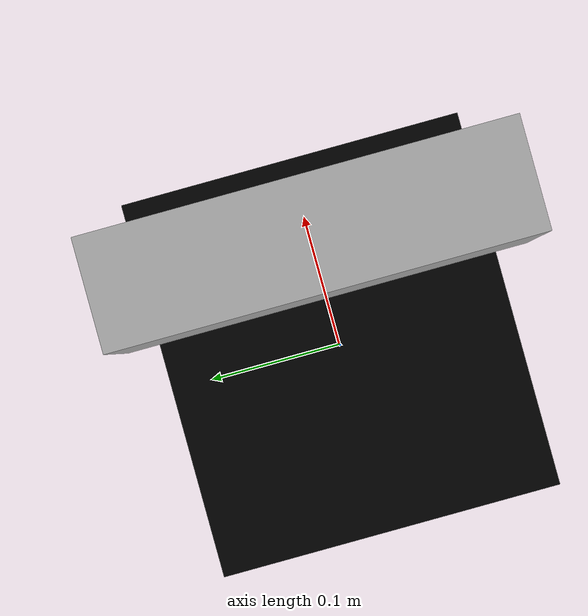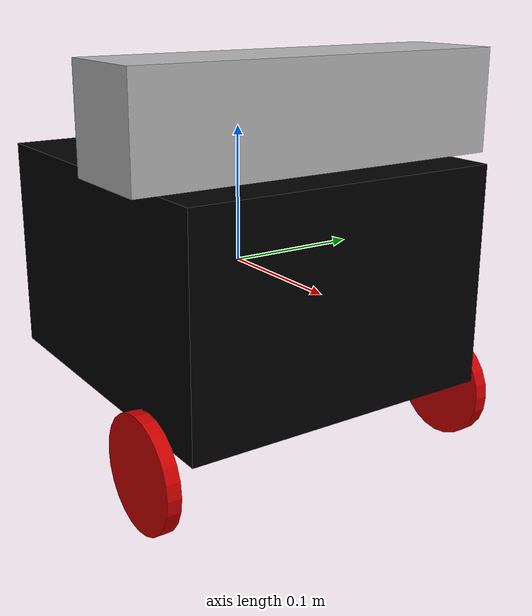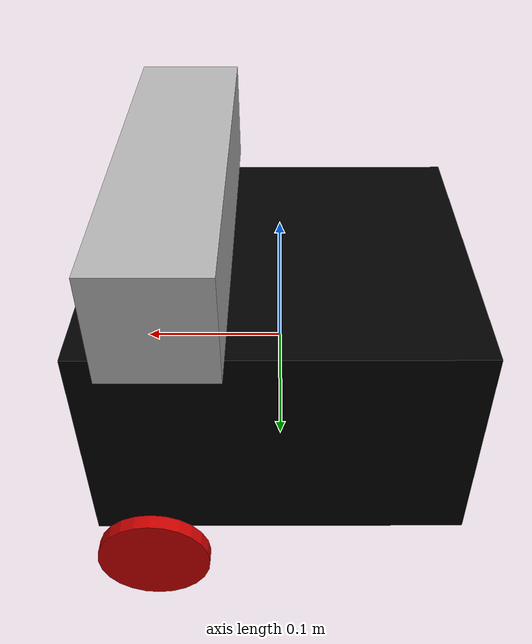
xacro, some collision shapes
<?xml version="1.0"?>
<robot xmlns:xacro="http://www.ros.org/wiki/xacro" name="vacumm_bot1">

  <xacro:property name="base_width" value="0.235"/>
  <xacro:property name="base_height" value="0.16"/>
  <xacro:property name="base_len" value="0.26"/>
  <xacro:property name="wheel_radius" value="0.04"/>
  <xacro:property name="base_wheel_gap" value="0.0125"/>

  <xacro:property name="wheel_joint_offset" value="0.09"/>
  <xacro:property name="wheel_joint_drop_offset" value="-0.02"/>

  <xacro:property name="caster_wheel_radius" value="${wheel_radius/2}"/>
  <xacro:property name="caster_wheel_mass" value="0.0001"/>
  <xacro:property name="caster_wheel_joint_offset" value="0.07"/>
  <xacro:property name="caster_wheel_down_offset" value="0.0001"/>

  <xacro:property name="M_PI" value="3.1415926535897931" />
  <xacro:property name="cam_px" value="0.1" />
  <xacro:property name="cam_pz" value="${base_height-0.025}" />
  <xacro:property name="kinect_cam_py" value="0"/>
  <xacro:property name="cam_or" value="0" />
  <xacro:property name="cam_op" value="0" />
  <xacro:property name="cam_oy" value="0" />

  <!--Color Properties-->
  <material name="blue">
    <color rgba="0 0 0.8 1"/>
  </material>
  <material name="black">
    <color rgba="0 0 0 1"/>
  </material>
  <material name="white">
    <color rgba="1 1 1 1"/>
  </material>
  <material name="red">
    <color rgba="0.8 0.0 0.0 1.0"/>
  </material>

  <!--Interial macros-->
  <xacro:macro name="cylinder_inertia" params="m r h">
    <inertial>
      <mass value="${m}"/>
      <inertia ixx="${m*(3*r*r+h*h)/12}" ixy = "0" ixz = "0" iyy="${m*(3*r*r+h*h)/12}" iyz = "0" izz="${m*r*r/2}"/>
    </inertial>
  </xacro:macro>

  <xacro:macro name="box_inertia" params="m w h d">
    <inertial>
      <mass value="${m}"/>
      <inertia ixx="${m / 12.0 * (d*d + h*h)}" ixy="0.0" ixz="0.0" iyy="${m / 12.0 * (w*w + h*h)}" iyz="0.0" izz="${m / 12.0 * (w*w + d*d)}"/>
    </inertial>
  </xacro:macro>

  <xacro:macro name="sphere_inertia" params="m r">
    <inertial>
      <mass value="${m}"/>
      <inertia ixx="${2.0*m*(r*r)/5.0}" ixy="0.0" ixz="0.0" iyy="${2.0*m*(r*r)/5.0}" iyz="0.0" izz="${2.0*m*(r*r)/5.0}"/>
    </inertial>
  </xacro:macro>

  <xacro:macro name="wheel_transmission" params="prefix">
    <transmission name="${prefix}_wheel_joint_trans" type="SimpleTransmission">
      <type>transmission_interface/SimpleTransmission</type>
      <joint name="${prefix}_wheel_joint">
        <hardwareInterface>hardware_interface/VelocityJointInterface</hardwareInterface>
      </joint>
      <actuator name="${prefix}_wheel_joint_motor">
        <hardwareInterface>hardware_interface/VelocityJointInterface</hardwareInterface>
        <mechanicalReduction>1</mechanicalReduction>
      </actuator>
    </transmission>
  </xacro:macro>

  <xacro:macro name="gazebo_wheel" params="prefix">
    <gazebo reference="${prefix}_wheel">
        <mu1>1.5</mu1>
        <mu2>1.5</mu2>
        <slip1>0</slip1>
        <slip2>0</slip2>
        <material>Gazebo/Grey</material>
        <turnGravityOff>false</turnGravityOff>
    </gazebo>
  </xacro:macro>

  <gazebo reference="base_link">

    <material>Gazebo/Grey</material>
    <turnGravityOff>false</turnGravityOff>
  </gazebo>

  <xacro:macro name="gazebo_caster" params="prefix">
    <gazebo reference="${prefix}_caster_wheel_link">
      <mu1 value="0"/>
      <mu2 value="0"/>
      <material>Gazebo/Grey</material>
      <turnGravityOff>false</turnGravityOff>
    </gazebo>
  </xacro:macro>

  <xacro:gazebo_wheel prefix="left"/>
  <xacro:gazebo_wheel prefix="right"/>
  <xacro:gazebo_caster prefix="front"/>
  <xacro:gazebo_caster prefix="back"/>

  <xacro:macro name="wheel_transmission" params="prefix">
    <transmission name="${prefix}_wheel_joint_trans" type="SimpleTransmission">
      <type>transmission_interface/SimpleTransmission</type>
      <joint name="${prefix}_wheel_joint">
        <hardwareInterface>hardware_interface/VelocityJointInterface</hardwareInterface>
      </joint>
      <actuator name="${prefix}_wheel_joint_motor">
        <hardwareInterface>hardware_interface/VelocityJointInterface</hardwareInterface>
        <mechanicalReduction>1</mechanicalReduction>
      </actuator>
    </transmission>
  </xacro:macro>

  <!--Front Caster Wheel Link-->
  <xacro:macro name="caster_wheel" params="prefix reflect">
    <!--Caster Wheel Link-->
    <link name="${prefix}_caster_wheel_link">
      <collision >
        <origin xyz="0 0 0" rpy="0 0 0"/>
        <geometry>
          <sphere radius="${caster_wheel_radius}"/>
        </geometry>
        <surface>
          <friction>
            <ode>
              <mu>0</mu>
              <mu2>0</mu2>
              <slip1>1</slip1>
              <slip2>1</slip2>
            </ode>
          </friction>
        </surface>
      </collision>
      <xacro:sphere_inertia m="0.02" r="${caster_wheel_radius}"/>
    </link>

    <!--Caster Wheel Joint-->
    <joint name="${prefix}_caster_wheel_joint" type="continuous">
      <axis xyz="0 1 0" rpy="0 0 0" />
      <parent link="base_link"/>
      <child link="${prefix}_caster_wheel_link"/>
      <origin xyz="${caster_wheel_joint_offset*reflect} 0 -${((base_width/2))-caster_wheel_down_offset}" rpy="0 0 0"/>
    </joint>

    <xacro:sphere_inertia m="0.02" r="${caster_wheel_radius}"/>

  </xacro:macro>

  <gazebo>
    <plugin name="gazebo_ros_control" filename="libgazebo_ros_control.so">
      <legacyMode>false</legacyMode>

    </plugin>
  </gazebo>

<gazebo>
    <plugin filename="libgazebo_ros_diff_drive.so" name="differential_drive_controller">
      <alwaysOn>true</alwaysOn>
      <updateRate>20</updateRate>
      <leftJoint>left_wheel_joint</leftJoint>
      <rightJoint>right_wheel_joint</rightJoint>
      <wheelSeparation>0.235</wheelSeparation>
      <wheelDiameter>0.08</wheelDiameter>
      <torque>0.1</torque>
      <commandTopic>cmd_vel</commandTopic>
      <odometryTopic>odom</odometryTopic>
      <odometryFrame>odom</odometryFrame>
      <odometrySource>1</odometrySource>
        <publishOdomTF>true</publishOdomTF>
    <robotBaseFrame>base_footprint</robotBaseFrame>
    <publishWheelTF>false</publishWheelTF>
    <publishTf>true</publishTf>
    <publishWheelJointState>false</publishWheelJointState>
    <legacyMode>false</legacyMode>
    </plugin>
  </gazebo>

  <xacro:macro name="vacumm_sim_3dsensor">
    <gazebo reference="camera_link">
      <sensor type="depth" name="camera">
        <always_on>true</always_on>
        <update_rate>20.0</update_rate>
        <camera>
          <horizontal_fov>${60.0*M_PI/180.0}</horizontal_fov>
          <image>
            <format>B8G8R8</format>
            <width>640</width>
            <height>480</height>
          </image>
          <clip>
            <near>0.05</near>
            <far>8.0</far>
          </clip>
        </camera>
        <plugin name="kinect_camera_controller" filename="libgazebo_ros_openni_kinect.so">
          <cameraName>camera</cameraName>
          <alwaysOn>true</alwaysOn>
          <updateRate>10</updateRate>
          <imageTopicName>rgb/image_raw</imageTopicName>
          <depthImageTopicName>depth/image_raw</depthImageTopicName>
          <pointCloudTopicName>depth/points</pointCloudTopicName>
          <cameraInfoTopicName>rgb/camera_info</cameraInfoTopicName>
          <depthImageCameraInfoTopicName>depth/camera_info</depthImageCameraInfoTopicName>
          <frameName>camera_depth_optical_frame</frameName>
          <baseline>0.1</baseline>
          <distortion_k1>0.0</distortion_k1>
          <distortion_k2>0.0</distortion_k2>
          <distortion_k3>0.0</distortion_k3>
          <distortion_t1>0.0</distortion_t1>
          <distortion_t2>0.0</distortion_t2>
          <pointCloudCutoff>0.4</pointCloudCutoff>
        </plugin>
      </sensor>
    </gazebo>
  </xacro:macro>
  <!--Base Footprint-->
  <link name="base_footprint">
    <xacro:box_inertia m="1" w="0.001" h="0.001" d="0.001"/>
    <visual>
      <origin xyz="0 0 0" rpy="0 0 0" />
      <geometry>
        <box size="0.001 0.001 0.001" />
      </geometry>
    </visual>
  </link>

  <!--Base link-->
  <link name="base_link">
    <xacro:box_inertia m="2" w="0.2" h="0.2" d="0.2"/>
    <visual>
      <geometry>
        <box size="${base_len} ${base_width} ${base_height}" />
      </geometry>
      <material name="black"/>
    </visual>
    <collision>
      <geometry>
         <box size="${base_len} ${base_width} ${base_height}" />
      </geometry>
    </collision>

  </link>

  <!--base_link to base_footprint Joint-->
  <joint name="base_link_joint" type="fixed">
    <origin xyz="0 0 0" rpy="0 0 0" />
    <parent link="base_footprint"/>
    <child link="base_link" />
  </joint>

  <xacro:caster_wheel prefix="back" reflect="-1"/>

  <!--Wheel link & joint macro-->
  <xacro:macro name="wheel" params="prefix reflect">
    <link name="${prefix}_wheel">
      <visual>
        <origin xyz="0 0 0" rpy="${pi/2} 0 0"/>
        <geometry>
          <cylinder radius="${wheel_radius}" length="0.01"/>
        </geometry>
        <material name="red"/>
      </visual>
      <collision>
        <origin xyz="0 0 0" rpy="${pi/2} 0 0"/>
        <geometry>
          <cylinder radius="${wheel_radius}" length="0.01"/>
        </geometry>
        <surface>
          <friction>
            <ode>
              <mu>1.16</mu>
              <mu2>1.16</mu2>
              <fdir1>1 1 0</fdir1>
              <slip1>0</slip1>
              <slip2>0</slip2>
            </ode>

          </friction>
        </surface>
      </collision>
      <xacro:sphere_inertia m="3" r="${wheel_radius}" />
    </link>

    <joint name="${prefix}_wheel_joint" type="continuous">
      <axis xyz="0 1 0" rpy="0 0 0" />
      <parent link="base_link"/>
      <child link="${prefix}_wheel"/>
      <limit effort="10000" velocity="1000"/>
      <joint_properties damping="0" friction="1.16" />
      <origin xyz="${wheel_joint_offset} ${((base_width/2)+base_wheel_gap)*reflect} -${(base_width/2)+wheel_joint_drop_offset}" rpy="0 0 0"/>
    </joint>
  </xacro:macro>

  <!--Create Left & Right Wheel links/joints-->
  <xacro:wheel prefix="left" reflect="1"/>
  <xacro:wheel prefix="right" reflect="-1"/>

  <xacro:wheel_transmission prefix="left" />
  <xacro:wheel_transmission prefix="right" />

  <xacro:macro name="sensor_kinect" params="parent">
    <joint name="camera_joint" type="fixed">
      <origin xyz="${cam_px} ${kinect_cam_py} ${cam_pz}" rpy="${cam_or} ${cam_op} ${cam_oy}"/>
      <parent link="${parent}"/>
      <child link="camera_link" />
    </joint>
    <link name="camera_link"/>

    <joint name="camera_rgb_optical_joint" type="fixed">
      <origin xyz="0 0 0" rpy="${-M_PI/2} 0 ${-M_PI/2}" />
      <parent link="camera_rgb_frame" />
      <child link="camera_rgb_optical_frame" />
    </joint>
    <link name="camera_rgb_optical_frame"/>

    <joint name="camera_rgb_joint" type="fixed">
      <origin xyz="-0.031 ${-kinect_cam_py} -0.016" rpy="0 0 0"/>
      <parent link="camera_link"/>
      <child link="camera_rgb_frame"/>
    </joint>
    <link name="camera_rgb_frame">
      <visual>
        <origin xyz="0 0 0" rpy="0 0 ${M_PI/2}"/>
        <geometry>
          <mesh filename="package://vacumm_description/meshes/sensors/kinect.dae"/>
        </geometry>
      </visual>
      <collision>
        <origin xyz="0.0 0.0 0.0" rpy="0 0 0"/>
        <geometry>
          <box size="0.07271 0.27794 0.073"/>
        </geometry>
      </collision>
      <inertial>
        <mass value="0.564" />
        <origin xyz="0 0 0" />
        <inertia ixx="0.003881243" ixy="0.0" ixz="0.0" iyy="0.000498940" iyz="0.0" izz="0.003879257" />
      </inertial>
    </link>

    <joint name="camera_depth_joint" type="fixed">
      <origin xyz="0 ${2 * -kinect_cam_py} 0" rpy="0 0 0" />
      <parent link="camera_rgb_frame" />
      <child link="camera_depth_frame" />
    </joint>
    <link name="camera_depth_frame"/>

    <joint name="camera_depth_optical_joint" type="fixed">
      <origin xyz="0 0 0" rpy="${-M_PI/2} 0 ${-M_PI/2}" />
      <parent link="camera_depth_frame" />
      <child link="camera_depth_optical_frame" />
    </joint>
    <link name="camera_depth_optical_frame"/>

    <!-- Kinect sensor for simulation -->
    <xacro:vacumm_sim_3dsensor/>
  </xacro:macro>

  <xacro:sensor_kinect parent="base_link" />
</robot>
